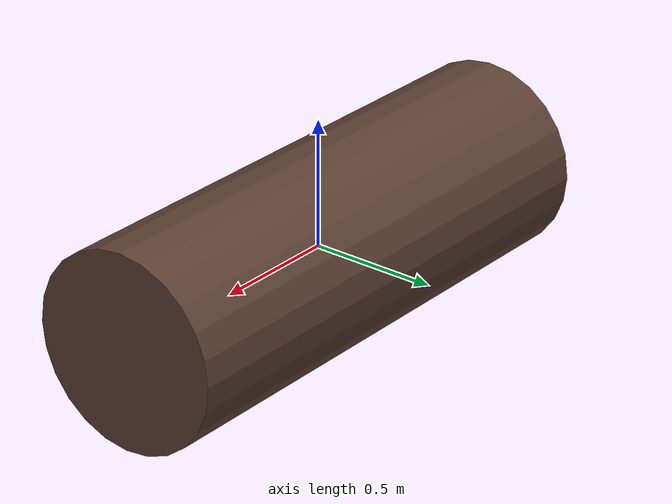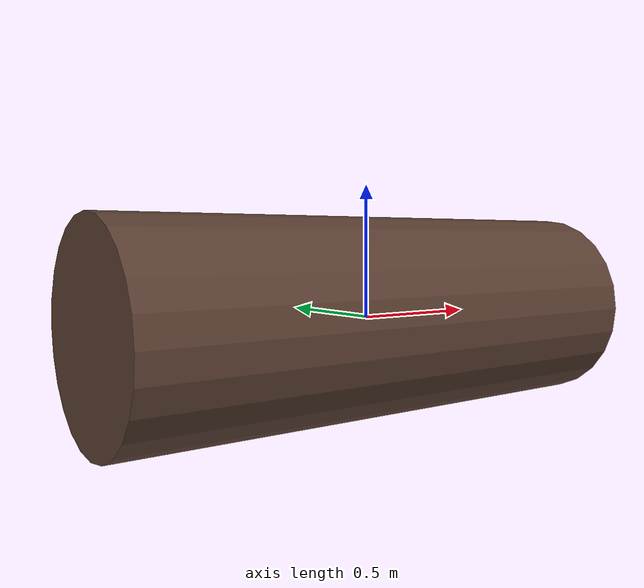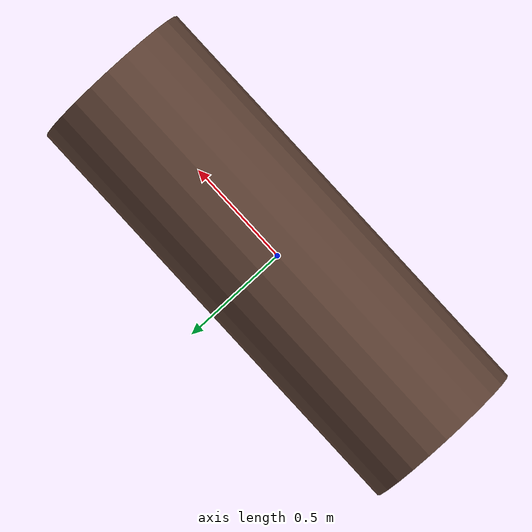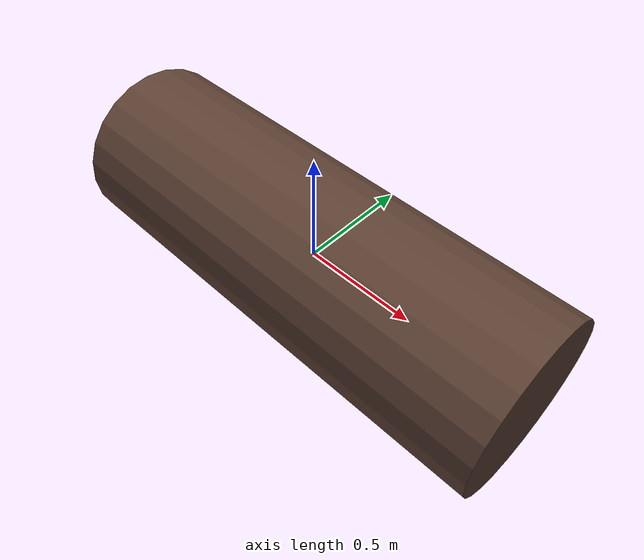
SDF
<?xml version="1.0" ?>
<sdf version="1.6">
  <model name="trunk1_static">
    <static>1</static>
    <link name="link">
      <inertial>
        <pose>0 0 -5 0 0 0</pose>
        <!-- Mass determined based on buoyancy geometry so object
             floats at mid-point of sphere -->
        <mass>20</mass>
        <!-- Mark only - based on cylinder -->
        <inertia>
          <ixx>1.0</ixx>
          <ixy>0</ixy>
          <ixz>0</ixz>
          <iyy>1.0</iyy>
          <iyz>0</iyz>
          <izz>0.1</izz>
        </inertia>
      </inertial>
      <collision name="crocodile_collision">
        <pose>0 0 0 1.57 0 1.57</pose>
        <geometry>
          <cylinder>
	    <radius>0.38</radius>
	    <length>2.10</length>
          </cylinder>
        </geometry>
      </collision>
      <visual name="crocodile_visual">
        <pose>0 0 0 1.57 0 1.57</pose>
        <geometry>
           <cylinder>
             <radius>0.38</radius>
             <length>2.10</length>
           </cylinder>
        </geometry>
         <material>
          <ambient>0.36 0.25 0.20 1</ambient> <!-- Cor marrom -->
          <diffuse>0.36 0.25 0.20 1</diffuse> <!-- Cor marrom -->
          <specular>0.1 0.1 0.1 1</specular> <!-- Reflexo fraco -->
        </material>
      </visual>

    </link>

  </model>
</sdf>
